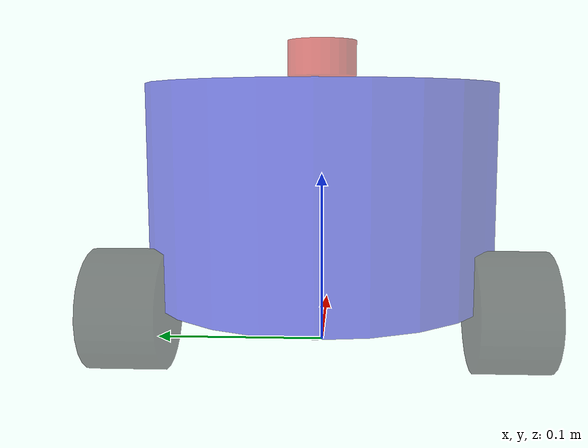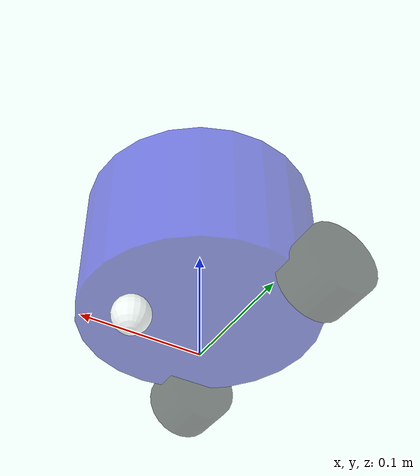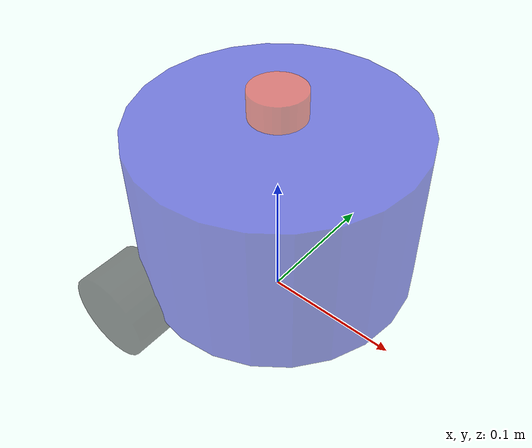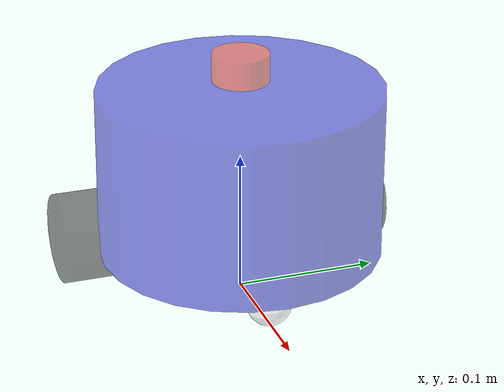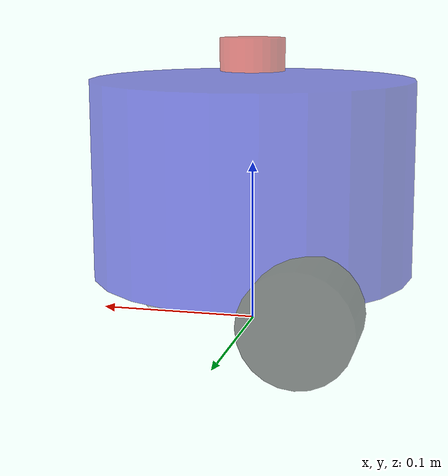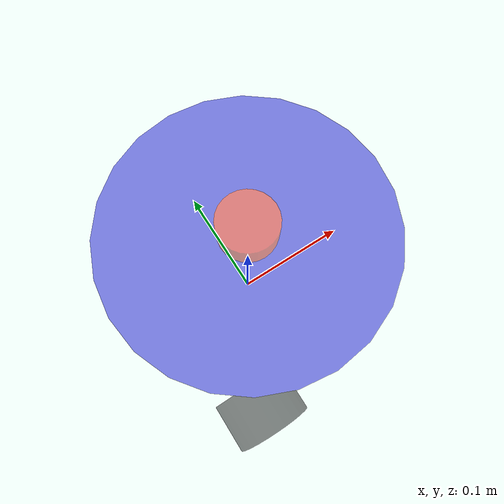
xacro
<?xml version="1.0"?>
<robot name="kkbot"
    xmlns:xacro="http://www.ros.org/wiki/xacro">
    <xacro:include filename="xacro_template.xacro"/>

    <!-- base_footprint -->
    <link name="base_footprint"/>

    <!-- base -->
    <link name="base_link">
        <xacro:cylinder_visual r="${bot_radius}" h="${bot_length}" origin_r="0" origin_p="0" origin_y="0" color="blue"/>
        <xacro:cylinder_collision r="${bot_radius}" h="${bot_length}" origin_r="0" origin_p="0" origin_y="0" color="blue"/>
        <xacro:cylinder_inertia m="0.2" r="${bot_radius}" h="${bot_length}" />
    </link>
    <xacro:joint name="base" parent_name="base_footprint" type="fixed" origin_x="0" origin_y="0" origin_z="${bot_length / 2 + wheel_radius}" axis_x="0" axis_y="0" axis_z="0" />

    <!-- laser -->
    <link name="laser_link">
        <xacro:cylinder_visual r="${laser_radius}" h="${laser_length}" origin_r="0" origin_p="0" origin_y="0" color="red"/>
        <xacro:cylinder_collision r="${laser_radius}" h="${laser_length}" origin_r="0" origin_p="0" origin_y="0" color="red"/>
        <xacro:cylinder_inertia m="0.1" r="${laser_radius}" h="${laser_length}" />
    </link>
    <xacro:joint name="laser" parent_name="base_link" type="fixed" origin_x="0" origin_y="0" origin_z="0.075" axis_x="0" axis_y="0" axis_z="0" />

    <!-- imu -->
    <link name="imu_link">
        <xacro:box_visual w="${imu_width}" d="${imu_depth}" h="${imu_heigth}" origin_r="0" origin_p="0" origin_y="0" color="green"/>
        <xacro:box_collision w="${imu_width}" d="${imu_depth}" h="${imu_heigth}" origin_r="0" origin_p="0" origin_y="0" color="green"/>
        <xacro:box_inertia m="0.1" w="${imu_width}" d="${imu_depth}" h="${imu_heigth}" />
    </link>
    <xacro:joint name="imu" parent_name="base_link" type="fixed" origin_x="0" origin_y="0" origin_z="0.02" axis_x="0" axis_y="0" axis_z="0" />

    <!-- left_wheel -->
    <link name="left_wheel_link">
        <xacro:cylinder_visual r="${wheel_radius}" h="${wheel_length}" origin_r="${pi / 2}" origin_p="0" origin_y="0" color="black"/>
        <xacro:cylinder_collision r="${wheel_radius}" h="${wheel_length}" origin_r="${pi / 2}" origin_p="0" origin_y="0" color="black"/>
        <xacro:cylinder_inertia m="0.2" r="${wheel_radius}" h="${wheel_length}" />
    </link>
    <xacro:joint name="left_wheel" parent_name="base_link" type="continuous" origin_x="-0.05" origin_y="${bot_radius}" origin_z="-${bot_length / 2}" axis_x="0" axis_y="1" axis_z="0" />

    <!-- right_wheel -->
    <link name="right_wheel_link">
        <xacro:cylinder_visual r="${wheel_radius}" h="${wheel_length}" origin_r="${pi / 2}" origin_p="0" origin_y="0" color="black"/>
        <xacro:cylinder_collision r="${wheel_radius}" h="${wheel_length}" origin_r="${pi / 2}" origin_p="0" origin_y="0" color="black"/>
        <xacro:cylinder_inertia m="0.2" r="${wheel_radius}" h="${wheel_length}" />
    </link>
    <xacro:joint name="right_wheel" parent_name="base_link" type="continuous" origin_x="-0.05" origin_y="-${bot_radius}" origin_z="-${bot_length / 2}" axis_x="0" axis_y="1" axis_z="0" />

    <!-- caster -->
    <link name="caster_link">
        <xacro:sphere_visual r="${caster_radius}" origin_r="0" origin_p="0" origin_y="0" color="white"/>
        <xacro:sphere_collision r="${caster_radius}" origin_r="0" origin_p="0" origin_y="0" color="white"/>
        <xacro:sphere_inertia m="0.02" r="${caster_radius}" />
    </link>
    <xacro:joint name="caster" parent_name="base_link" type="fixed" origin_x="0.06" origin_y="0" origin_z="-${bot_length / 2 + caster_radius}" axis_x="0" axis_y="1" axis_z="0" />

    <!-- gazebo plugin -->
    <gazebo>
        <plugin name='diff_drive' filename='libgazebo_ros_diff_drive.so'>
            <ros>
                <namespace>/</namespace>
                <remapping>cmd_vel:=cmd_vel</remapping>
                <remapping>odom:=odom</remapping>
            </ros>
            <update_rate>30</update_rate>
            <!-- wheels -->
            <left_joint>left_wheel_joint</left_joint>
            <right_joint>right_wheel_joint</right_joint>
            <!-- kinematics -->
            <wheel_separation>0.2</wheel_separation>
            <wheel_diameter>0.065</wheel_diameter>
            <!-- limits -->
            <max_wheel_torque>20</max_wheel_torque>
            <max_wheel_acceleration>1.0</max_wheel_acceleration>
            <!-- output -->
            <publish_odom>true</publish_odom>
            <publish_odom_tf>true</publish_odom_tf>
            <publish_wheel_tf>false</publish_wheel_tf>
            <odometry_frame>odom</odometry_frame>
            <robot_base_frame>base_footprint</robot_base_frame>
        </plugin>

        <plugin name="kkbot_joint_state" filename="libgazebo_ros_joint_state_publisher.so">
            <ros>
                <remapping>~/out:=joint_states</remapping>
            </ros>
            <update_rate>30</update_rate>
            <joint_name>right_wheel_joint</joint_name>
            <joint_name>left_wheel_joint</joint_name>
        </plugin>
    </gazebo>

    <gazebo reference="imu_link">
        <sensor name="imu_sensor" type="imu">
            <plugin filename="libgazebo_ros_imu_sensor.so" name="imu_plugin">
                <ros>
                    <namespace>/</namespace>
                    <remapping>~/out:=imu</remapping>
                </ros>
                <initial_orientation_as_reference>false</initial_orientation_as_reference>
            </plugin>
            <always_on>true</always_on>
            <update_rate>200</update_rate>
            <visualize>true</visualize>
            <imu>
                <angular_velocity>
                    <x>
                        <noise type="gaussian">
                            <mean>0.0</mean>
                            <stddev>2e-4</stddev>
                        </noise>
                    </x>
                    <y>
                        <noise type="gaussian">
                            <mean>0.0</mean>
                            <stddev>2e-4</stddev>
                        </noise>
                    </y>
                    <z>
                        <noise type="gaussian">
                            <mean>0.0</mean>
                            <stddev>2e-4</stddev>
                        </noise>
                    </z>
                </angular_velocity>
                <linear_acceleration>
                    <x>
                        <noise type="gaussian">
                            <mean>0.0</mean>
                            <stddev>1.7e-2</stddev>
                        </noise>
                    </x>
                    <y>
                        <noise type="gaussian">
                            <mean>0.0</mean>
                            <stddev>1.7e-2</stddev>
                        </noise>
                    </y>
                    <z>
                        <noise type="gaussian">
                            <mean>0.0</mean>
                            <stddev>1.7e-2</stddev>
                        </noise>
                    </z>
                </linear_acceleration>
            </imu>
        </sensor>
    </gazebo>

    <gazebo reference="laser_link">
        <material>Gazebo/Black</material>
        <sensor name="laser_sensor" type="ray">
            <always_on>true</always_on>
            <visualize>true</visualize>
            <update_rate>5</update_rate>
            <pose>0 0 0.075 0 0 0</pose>
            <ray>
                <scan>
                    <horizontal>
                        <samples>360</samples>
                        <resolution>1.000000</resolution>
                        <min_angle>0.000000</min_angle>
                        <max_angle>6.280000</max_angle>
                    </horizontal>
                </scan>
                <range>
                    <min>0.120000</min>
                    <max>20</max>
                    <resolution>0.015000</resolution>
                </range>
                <noise>
                    <type>gaussian</type>
                    <mean>0.0</mean>
                    <stddev>0.01</stddev>
                </noise>
            </ray>

            <plugin name="laserscan" filename="libgazebo_ros_ray_sensor.so">
                <ros>
                    <remapping>~/out:=scan</remapping>
                </ros>
                <output_type>sensor_msgs/LaserScan</output_type>
                <frame_name>laser_link</frame_name>
            </plugin>
        </sensor>
    </gazebo>

    <gazebo reference="caster_link">
        <material>Gazebo/Black</material>
        <mu1 value="0.0"/>
        <mu2 value="0.0"/>
        <kp value="1000000.0"/>
        <kd value="10.0"/>
    </gazebo>
</robot>

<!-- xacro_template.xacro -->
<robot xmlns:xacro="http://ros.org/wiki/xacro">

    <xacro:macro name="red">
        <material name="red">
            <color rgba="0.8 0.0 0.0 0.5"/>
        </material>
    </xacro:macro>

    <xacro:macro name="green">
        <material name="green">
            <color rgba="0.0 0.8 0.0 0.5"/>
        </material>
    </xacro:macro>

    <xacro:macro name="blue">
        <material name="blue">
            <color rgba="0.0 0.0 0.8 0.5"/>
        </material>
    </xacro:macro>

    <xacro:macro name="black">
        <material name="black">
            <color rgba="0.0 0.0 0.0 0.5"/>
        </material>
    </xacro:macro>

    <xacro:macro name="white">
        <material name="white">
            <color rgba="1 1 1 0.5"/>
        </material>
    </xacro:macro>

    <xacro:macro name="material" params="color">
        <xacro:if value="${color == 'red'}">
            <xacro:red/>
        </xacro:if>
        <xacro:if value="${color == 'green'}">
            <xacro:green/>
        </xacro:if>
        <xacro:if value="${color == 'blue'}">
            <xacro:blue/>
        </xacro:if>
        <xacro:if value="${color == 'black'}">
            <xacro:black/>
        </xacro:if>
        <xacro:if value="${color == 'white'}">
            <xacro:white/>
        </xacro:if>
    </xacro:macro>

    <xacro:macro name="sphere_visual" params="r origin_r origin_p origin_y color">
        <visual>
            <origin xyz="0 0 0" rpy="${origin_r} ${origin_p} ${origin_y}"/>
            <geometry>
                <sphere radius="${r}"/>
            </geometry>
            <xacro:material color="${color}"/>
        </visual>
    </xacro:macro>

    <xacro:macro name="sphere_inertia" params="m r">
        <inertial>
            <mass value="${m}"/>
            <inertia ixx="${(2/5) * m * (r*r)}" ixy="0.0" ixz="0.0" iyy="${(2/5) * m * (r*r)}" iyz="0.0" izz="${(2/5) * m * (r*r)}"/>
        </inertial>
    </xacro:macro>

    <xacro:macro name="sphere_collision" params="r origin_r origin_p origin_y color">
        <collision>
            <origin xyz="0 0 0" rpy="${origin_r} ${origin_p} ${origin_y}"/>
            <geometry>
                <sphere radius="${r}"/>
            </geometry>
            <xacro:material color="${color}"/>
        </collision>
    </xacro:macro>

    <xacro:macro name="box_visual" params="w d h origin_r origin_p origin_y color">
        <visual>
            <origin xyz="0 0 0" rpy="${origin_r} ${origin_p} ${origin_y}"/>
            <geometry>
                <box size="${w} ${d} ${h}"/>
            </geometry>
            <xacro:material color="${color}"/>
        </visual>
    </xacro:macro>

    <xacro:macro name="box_inertia" params="m w d h">
        <inertial>
            <origin xyz="0 0 0" rpy="${pi/2} 0 ${pi/2}"/>
            <mass value="${m}"/>
            <inertia ixx="${(m/12) * (h*h + d*d)}" ixy="0.0" ixz="0.0" iyy="${(m/12) * (w*w + d*d)}" iyz="0.0" izz="${(m/12) * (w*w + h*h)}"/>
        </inertial>
    </xacro:macro>

    <xacro:macro name="box_collision" params="w d h origin_r origin_p origin_y color">
        <collision>
            <origin xyz="0 0 0" rpy="${origin_r} ${origin_p} ${origin_y}"/>
            <geometry>
                <box size="${w} ${d} ${h}"/>
            </geometry>
            <xacro:material color="${color}"/>
        </collision>
    </xacro:macro>

    <xacro:macro name="cylinder_visual" params="r h origin_r origin_p origin_y color">
        <visual>
            <origin xyz="0 0 0" rpy="${origin_r} ${origin_p} ${origin_y}"/>
            <geometry>
                <cylinder length="${h}" radius="${r}"/>
            </geometry>
            <xacro:material color="${color}"/>
        </visual>
    </xacro:macro>

    <xacro:macro name="cylinder_inertia" params="m r h">
        <inertial>
            <origin xyz="0 0 0" rpy="${pi/2} 0 0"/>
            <mass value="${m}"/>
            <inertia ixx="${(m/12) * (3*r*r + h*h)}" ixy="0" ixz="0" iyy="${(m/12) * (3*r*r + h*h)}" iyz="0" izz="${(m/2) * (r*r)}"/>
        </inertial>
    </xacro:macro>

    <xacro:macro name="cylinder_collision" params="r h origin_r origin_p origin_y color">
        <collision>
            <origin xyz="0 0 0" rpy="${origin_r} ${origin_p} ${origin_y}"/>
            <geometry>
                <cylinder length="${h}" radius="${r}"/>
            </geometry>
            <xacro:material color="${color}"/>
        </collision>
    </xacro:macro>

    <xacro:macro name="joint" params="name parent_name type origin_x origin_y origin_z axis_x axis_y axis_z">
        <joint name="${name}_joint" type="${type}">
            <parent link="${parent_name}"/>
            <child link="${name}_link"/>
            <origin xyz="${origin_x} ${origin_y} ${origin_z}"/>
            <axis xyz="${axis_x} ${axis_y} ${axis_z}"/>
        </joint>
    </xacro:macro>

    <xacro:property name="bot_length" value="0.12"/>
    <xacro:property name="bot_radius" value="0.10"/>

    <xacro:property name="laser_length" value="0.02"/>
    <xacro:property name="laser_radius" value="0.02"/>

    <xacro:property name="imu_width" value="0.02"/>
    <xacro:property name="imu_depth" value="0.02"/>
    <xacro:property name="imu_heigth" value="0.02"/>

    <xacro:property name="wheel_length" value="0.04"/>
    <xacro:property name="wheel_radius" value="0.032"/>

    <xacro:property name="caster_radius" value="0.016"/>

</robot>
